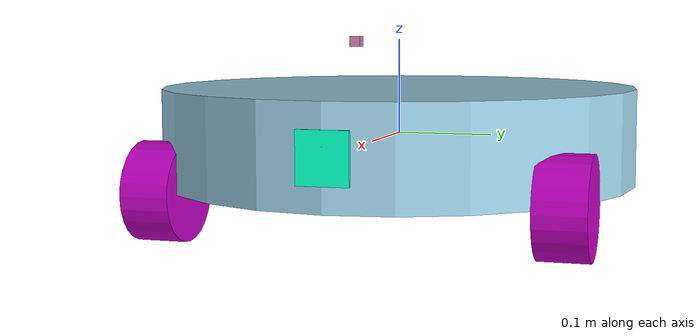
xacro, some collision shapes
<?xml version='1.0'?>

<robot name="custom_bot" xmlns:xacro="http://www.ros.org/wiki/xacro">

  <xacro:include filename="$(find custom_bot)/urdf/custom_bot.gazebo" />
  <xacro:property name="M_PI" value="3.1415926535897931" />

  <link name="robot_footprint"></link>

  <joint name="robot_footprint_joint" type="fixed">
    <origin xyz="0 0 0" rpy="0 0 0" />
    <parent link="robot_footprint"/>
    <child link="chassis" />
  </joint>

  <link name='chassis'>
    <pose>0 0 0.1 0 0 0</pose>

    <inertial>
      <mass value="10.0"/>
      <origin xyz="0.0 0 0" rpy=" 0 0 0"/>
      <inertia
          ixx="0.1" ixy="0" ixz="0"
          iyy="0.1" iyz="0"
          izz="0.1"
      />
    </inertial>

    <collision name='collision'>
      <origin xyz="0 0 0" rpy=" 0 0 0"/>
      <geometry>
        <cylinder radius="0.25" length="0.1"/>
      </geometry>
    </collision>

    <visual name='chassis_visual'>
      <origin xyz="0 0 0" rpy=" 0 0 0"/>
      <geometry>
        <cylinder radius="0.25" length="0.1"/>
      </geometry>
      <material name='chassis_color'>
        <color rgba="0.6 0.8 0.88 1"/>
      </material>
    </visual>

    <collision name='back_caster_collision'>
      <origin xyz="-0.2 0 -0.05" rpy=" 0 0 0"/>
      <geometry>
        <sphere radius="0.05"/>
      </geometry>
      <surface>
        <friction>
          <ode>
            <mu>0</mu>
            <mu2>0</mu2>
            <slip1>1.0</slip1>
            <slip2>1.0</slip2>
          </ode>
        </friction>
      </surface>
    </collision>

    <visual name='back_caster_visual'>
      <origin xyz="-0.2 0 -0.05" rpy=" 0 0 0"/>
      <geometry>
        <sphere radius="0.05"/>
      </geometry>
    </visual>

  </link>

  <joint type="continuous" name="left_wheel_hinge">
    <origin xyz="0.15 0.2 -0.05" rpy="0 0 0"/>
    <child link="left_wheel"/>
    <parent link="chassis"/>
    <axis xyz="0 1 0" rpy="0 0 0"/>
    <limit effort="10000" velocity="1000"/>
    <joint_properties damping="1.0" friction="1.0"/>
  </joint>

  <link name='left_wheel'>
    <inertial>
      <mass value="1.0"/>
      <origin xyz="0 0 0" rpy="0 1.5707 1.5707"/>
      <inertia
          ixx="0.1" ixy="0" ixz="0"
          iyy="0.1" iyz="0"
          izz="0.1"
      />
    </inertial>

    <collision>
      <origin xyz="0 0 0" rpy="0 1.5707 1.5707"/>
      <geometry>
        <cylinder radius="0.05" length="0.05"/>
      </geometry>
    </collision>

    <visual>
      <origin xyz="0 0 0" rpy="0 1.5707 1.5707"/>
      <geometry>
        <cylinder radius="0.05" length="0.05"/>
      </geometry>
      <material name='left_wheel_color'>
        <color rgba="0.75 0 0.75 1"/>
      </material>
    </visual>

  </link>

  <joint type="continuous" name="right_wheel_hinge">
    <origin xyz="0.15 -0.2 -0.05" rpy="0 0 0"/>
    <child link="right_wheel"/>
    <parent link="chassis"/>
    <axis xyz="0 1 0" rpy="0 0 0"/>
    <limit effort="10000" velocity="1000"/>
    <joint_properties damping="1.0" friction="1.0"/>
  </joint>

  <link name='right_wheel'>
    <inertial>
      <mass value="1.0"/>
      <origin xyz="0 0 0" rpy="0 1.5707 1.5707"/>
      <inertia
          ixx="0.1" ixy="0" ixz="0"
          iyy="0.1" iyz="0"
          izz="0.1"
      />
    </inertial>

    <collision>
      <origin xyz="0 0 0" rpy="0 1.5707 1.5707"/>
      <geometry>
        <cylinder radius="0.05" length="0.05"/>
      </geometry>
    </collision>

    <visual>
      <origin xyz="0 0 0" rpy="0 1.5707 1.5707"/>
      <geometry>
        <cylinder radius="0.05" length="0.05"/>
      </geometry>
      <material name='right_wheel_color'>
        <color rgba="0.75 0 0.75 1"/>
      </material>
    </visual>

  </link>

  <joint type="fixed" name="camera_joint">
    <origin xyz="0.225 0 0" rpy="0 0 0"/>
    <child link="camera"/>
    <parent link="chassis"/>
    <axis xyz="0 1 0" rpy="0 0 0"/>
    <limit effort="10000" velocity="1000"/>
    <joint_properties damping="1.0" friction="1.0"/>
  </joint>

  <link name='camera'>
    <inertial>
      <mass value="0.1"/>
      <origin xyz="0 0 0" rpy="0 0 0"/>
      <inertia
          ixx="1e-6" ixy="0" ixz="0"
          iyy="1e-6" iyz="0"
          izz="1e-6"
      />
    </inertial>

    <collision>
      <origin xyz="0 0 0" rpy="0 0 0"/>
      <geometry>
        <box size="0.05 0.05 0.05"/>
      </geometry>
    </collision>

    <visual>
      <origin xyz="0 0 0" rpy="0 0 0"/>
      <geometry>
        <box size="0.05 0.05 0.05"/>
      </geometry>
      <material name='camera_color'>
        <color rgba="0 1 0.75294 1"/>
      </material>
    </visual>

  </link>

  <joint name="camera_optical_joint" type="fixed">
    <origin xyz="0 0 0" rpy="${-M_PI/2} 0 ${-M_PI/2}" />
    <parent link="camera" />
    <child link="camera_optical" />
  </joint>

  <link name="camera_optical">
  </link>

  <joint type="fixed" name="hokuyo_joint">
    <origin xyz="0.15 0 0.1" rpy="0 0 0"/>
    <child link="hokuyo"/>
    <parent link="chassis"/>
    <axis xyz="0 1 0" rpy="0 0 0"/>
    <limit effort="10000" velocity="1000"/>
    <joint_properties damping="1.0" friction="1.0"/>
  </joint>

  <link name='hokuyo'>
    <inertial>
      <mass value="0.1"/>
      <origin xyz="0 0 0" rpy="0 0 0"/>
      <inertia
          ixx="1e-6" ixy="0" ixz="0"
          iyy="1e-6" iyz="0"
          izz="1e-6"
      />
    </inertial>

    <collision>
      <origin xyz="0 0 0" rpy="0 0 0"/>
      <geometry>
        <box size="0.01 0.01 0.01"/>
      </geometry>
    </collision>

    <visual>
      <origin xyz="0 0 0" rpy="0 0 0"/>
      <geometry>
        <mesh filename="package://custom_bot/meshes/hokuyo.dae"/>
      </geometry>
    </visual>

  </link>

</robot>
